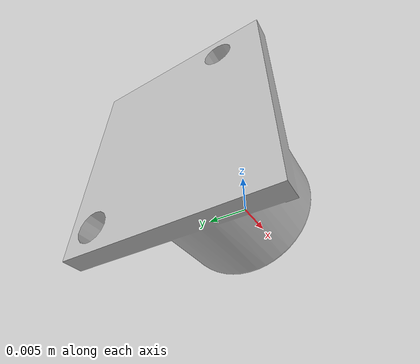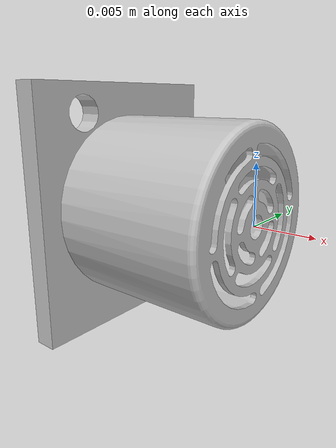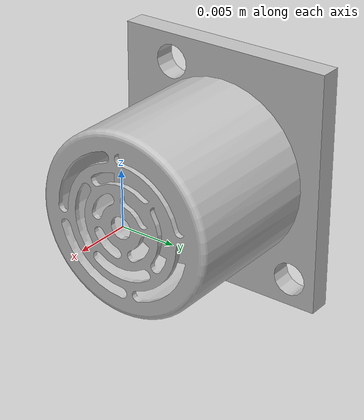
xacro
<robot name="Left_URF_link"><link name="Left_URF_link">
    <inertial>
      <origin rpy="0 0 0" xyz="-0.00942258060476561 1.68888278492922E-05 -0.000193183712129175" />
      <mass value="0.00277487854391404" />
      <inertia ixx="1.28314681514111E-07" ixy="-1.54585356342896E-10" ixz="3.11030599725484E-09" iyy="1.18940672500039E-07" iyz="4.35265830364889E-09" izz="1.28434121553121E-07" />
    </inertial>
    <visual>
      <origin rpy="0 0 0" xyz="0 0 0" />
      <geometry>
        <mesh filename="package://ric_description/komodo/meshes/Left_URF_link.STL" />
      </geometry>
      <material name="">
        <color rgba="0.752941176470588 0.752941176470588 0.752941176470588 1" />
      </material>
    </visual>
    <collision>
      <origin rpy="0 0 0" xyz="0 0 0" />
      <geometry>
        <mesh filename="package://ric_description/komodo/meshes/Left_URF_link.STL" />
      </geometry>
    </collision>
  </link>
  </robot>
